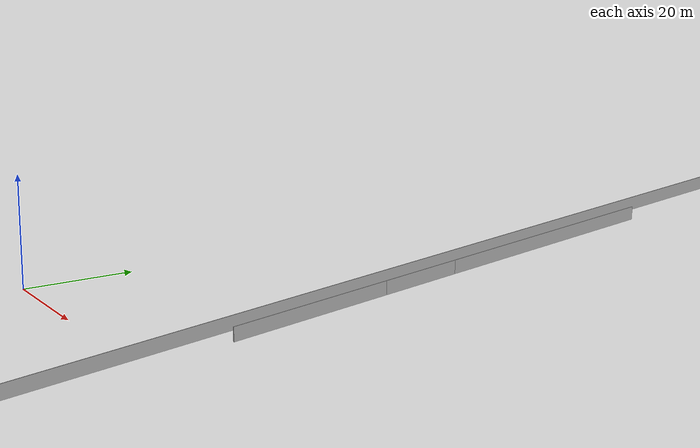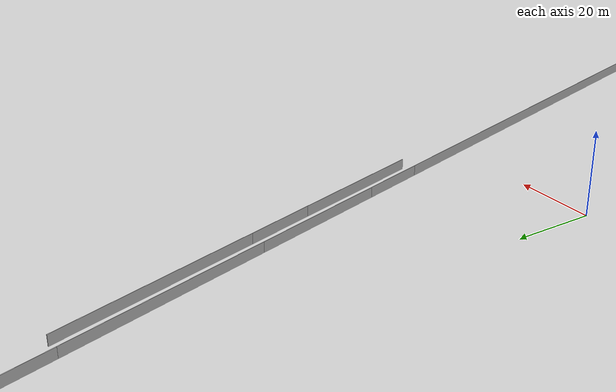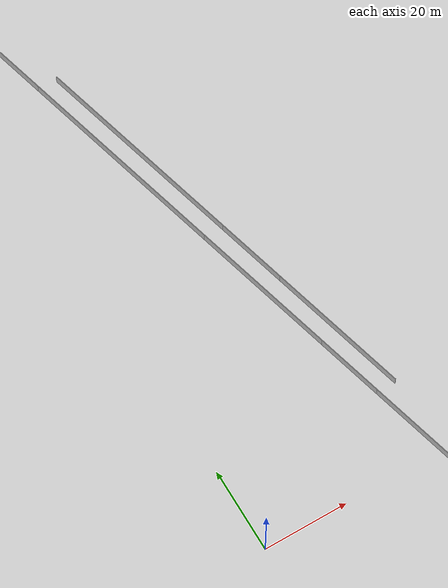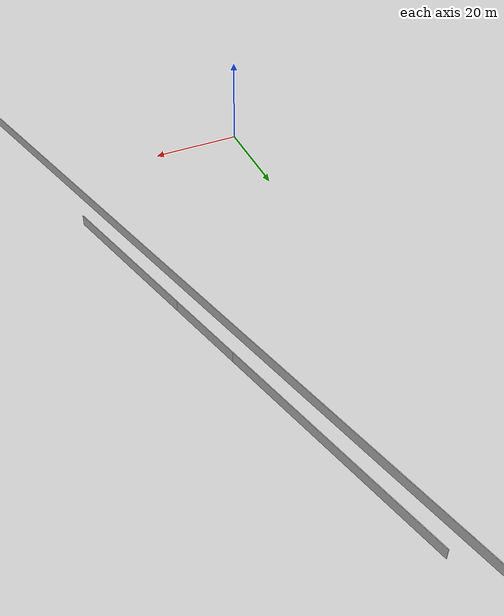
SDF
<?xml version="1.0" ?>
<sdf version="1.6">
  <model name="sps_0304">
    <pose frame="">0 0 0 0 -0 0</pose>
    <static>1</static>
    <self_collide>0</self_collide>
    <allow_auto_disable>0</allow_auto_disable>
    <link name="Wall96">
      <kinematic>0</kinematic>
      <gravity>1</gravity>
      <self_collide>0</self_collide>
      <collision name="collision">
        <geometry>
          <box>
            <size>34.401 0.15 2.5</size>
          </box>
        </geometry>
        <pose frame="">0 0 0 0 -0 0</pose>
      </collision>
      <visual name="visual">
        <geometry>
          <box>
            <size>34.401 0.15 2.5</size>
          </box>
        </geometry>
        <pose frame="">0 0 0 0 -0 0</pose>
        <cast_shadows>1</cast_shadows>
        <transparency>0.0</transparency>
      </visual>
      <pose frame="">38.8984 34.5136 1.25 0 -0 1.83122</pose>
    </link>
    <link name="Wall97">
      <kinematic>0</kinematic>
      <gravity>1</gravity>
      <self_collide>0</self_collide>
      <collision name="collision">
        <geometry>
          <box>
            <size>17.3439 0.15 2.5</size>
          </box>
        </geometry>
        <pose frame="">0 0 0 0 -0 0</pose>
      </collision>
      <visual name="visual">
        <geometry>
          <box>
            <size>17.3439 0.15 2.5</size>
          </box>
        </geometry>
        <pose frame="">0 0 0 0 -0 0</pose>
        <cast_shadows>1</cast_shadows>
        <transparency>0.0</transparency>
      </visual>
      <pose frame="">32.2365 59.5136 1.25 0 -0 1.83122</pose>
    </link>
    <link name="Wall98">
      <kinematic>0</kinematic>
      <gravity>1</gravity>
      <self_collide>0</self_collide>
      <collision name="collision">
        <geometry>
          <box>
            <size>51.7448 0.15 2.5</size>
          </box>
        </geometry>
        <pose frame="">0 0 0 0 -0 0</pose>
      </collision>
      <visual name="visual">
        <geometry>
          <box>
            <size>51.7448 0.15 2.5</size>
          </box>
        </geometry>
        <pose frame="">0 0 0 0 -0 0</pose>
        <cast_shadows>1</cast_shadows>
        <transparency>0.0</transparency>
      </visual>
      <pose frame="">23.3416 92.8931 1.25 0 -0 1.83122</pose>
    </link>
    <link name="Wall502">
      <kinematic>0</kinematic>
      <gravity>1</gravity>
      <self_collide>0</self_collide>
      <collision name="collision">
        <geometry>
          <box>
            <size>16.3128 0.15 2.5</size>
          </box>
        </geometry>
        <pose frame="">0 0 0 0 -0 0</pose>
      </collision>
      <visual name="visual">
        <geometry>
          <box>
            <size>16.3128 0.15 2.5</size>
          </box>
        </geometry>
        <pose frame="">0 0 0 0 -0 0</pose>
        <cast_shadows>1</cast_shadows>
        <transparency>0.0</transparency>
      </visual>
      <pose frame="">36.5697 25.7744 1.25 0 -0 1.83122</pose>
    </link>
    <link name="Wall503">
      <kinematic>0</kinematic>
      <gravity>1</gravity>
      <self_collide>0</self_collide>
      <collision name="collision">
        <geometry>
          <box>
            <size>35.4321 0.15 2.5</size>
          </box>
        </geometry>
        <pose frame="">0 0 0 0 -0 0</pose>
      </collision>
      <visual name="visual">
        <geometry>
          <box>
            <size>35.4321 0.15 2.5</size>
          </box>
        </geometry>
        <pose frame="">0 0 0 0 -0 0</pose>
        <cast_shadows>1</cast_shadows>
        <transparency>0.0</transparency>
      </visual>
      <pose frame="">29.9077 50.7744 1.25 0 -0 1.83122</pose>
    </link>
    <link name="Wall504">
      <kinematic>0</kinematic>
      <gravity>1</gravity>
      <self_collide>0</self_collide>
      <collision name="collision">
        <geometry>
          <box>
            <size>51.7448 0.15 2.5</size>
          </box>
        </geometry>
        <pose frame="">0 0 0 0 -0 0</pose>
      </collision>
      <visual name="visual">
        <geometry>
          <box>
            <size>51.7448 0.15 2.5</size>
          </box>
        </geometry>
        <pose frame="">0 0 0 0 -0 0</pose>
        <cast_shadows>1</cast_shadows>
        <transparency>0.0</transparency>
      </visual>
      <pose frame="">18.6839 92.8931 1.25 0 -0 1.83122</pose>
    </link>
    <link name="Wall1893">
      <kinematic>0</kinematic>
      <gravity>1</gravity>
      <self_collide>0</self_collide>
      <collision name="collision">
        <geometry>
          <box>
            <size>565.882 0.15 2.5</size>
          </box>
        </geometry>
        <pose frame="">0 0 0 0 -0 0</pose>
      </collision>
      <visual name="visual">
        <geometry>
          <box>
            <size>565.882 0.15 2.5</size>
          </box>
        </geometry>
        <pose frame="">0 0 0 0 -0 0</pose>
        <cast_shadows>1</cast_shadows>
        <transparency>0.0</transparency>
      </visual>
      <pose frame="">39.6438 14.2385 1.25 0 -0 1.83122</pose>
    </link>
  </model>
</sdf>
